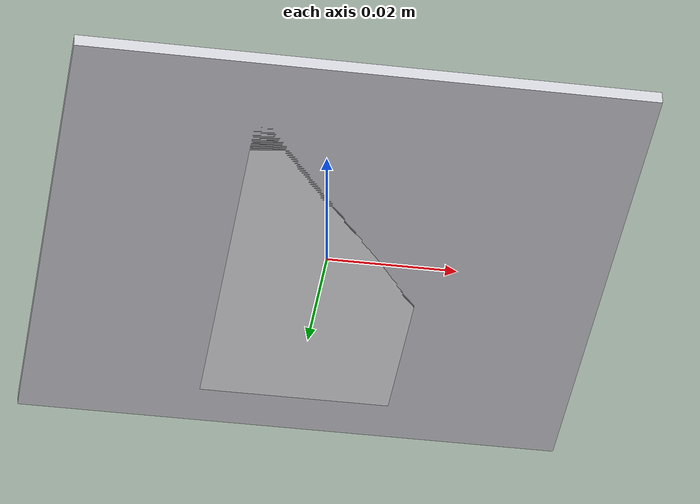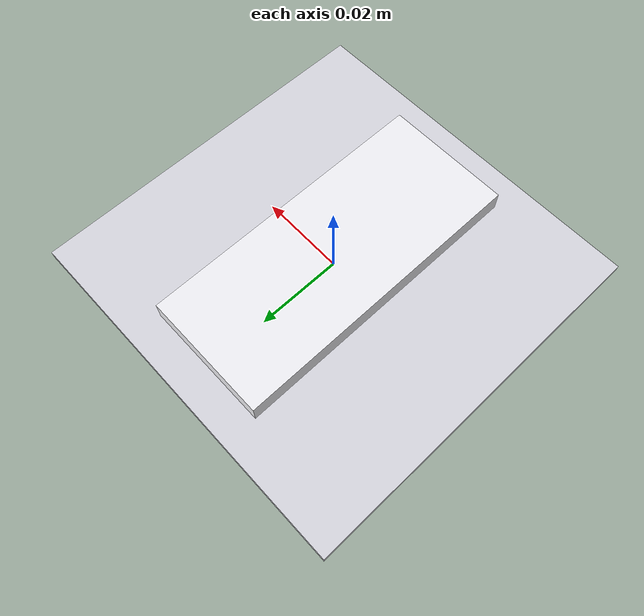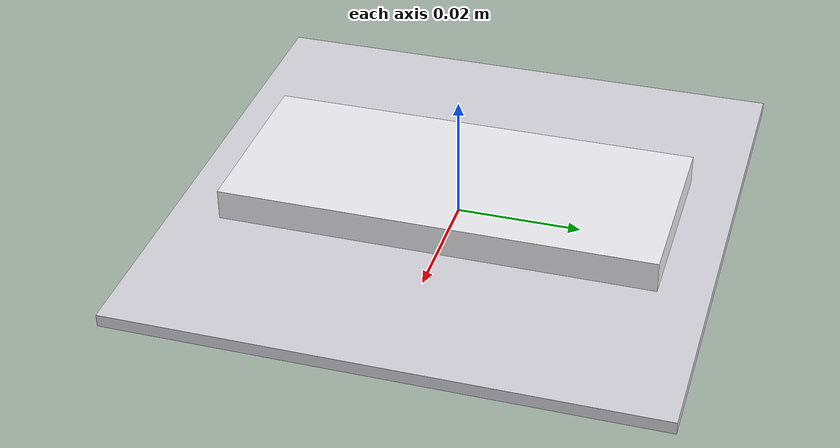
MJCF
<mujoco model="Switch_Quantity1_47">
  <asset>
    <material name="Switch_Quantity1_47_bezel" rgba="0.85 0.85 0.88 1" specular="0.85" shininess="0.9"/>
    <material name="Switch_Quantity1_47_button" rgba="0.95 0.95 0.97 1" specular="0.85" shininess="0.9"/>
  </asset>
  <worldbody>
    <body name="Switch_Quantity1_47">
      <geom name="Switch_Quantity1_47_bezel" type="box"
            pos="0 0 0.001" size="0.043 0.043 0.001"
            material="Switch_Quantity1_47_bezel"/>
      <geom name="Switch_Quantity1_47_button" type="box"
            pos="0 0 0.0035" size="0.015 0.035 0.0035"
            material="Switch_Quantity1_47_button"/>
    </body>
  </worldbody>
</mujoco>
